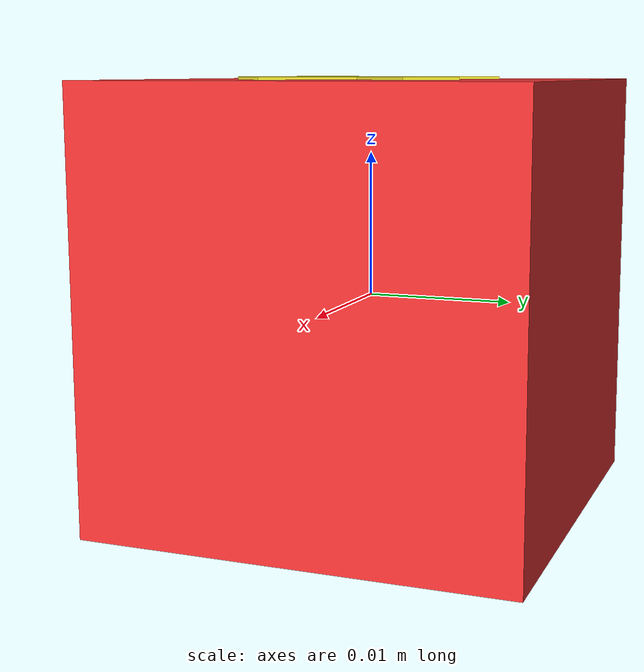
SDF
<?xml version="1.0"?>
<sdf version="1.6">
  <model name="workpiece_defect">
    <link name="link">
      <inertial>
        <mass>0.035</mass>
        <inertia>
          <ixx>5.25e-6</ixx>
          <ixy>0.0</ixy>
          <ixz>0.0</ixz>
          <iyy>5.25e-6</iyy>
          <iyz>0.0</iyz>
          <izz>5.25e-6</izz>
        </inertia>
      </inertial>
      <collision name="collision">
        <geometry>
          <box>
            <size>0.030 0.030 0.030</size>
          </box>
        </geometry>
        <surface>
          <friction>
            <ode>
              <mu>1.5</mu>
              <mu2>1.5</mu2>
              <slip1>0.0</slip1>
              <slip2>0.0</slip2>
            </ode>
            <torsional>
              <coefficient>5.0</coefficient>
              <patch_radius>0.015</patch_radius>
            </torsional>
          </friction>
          <contact>
            <ode>
              <kp>200000.0</kp>
              <kd>200.0</kd>
              <max_vel>0.005</max_vel>
              <min_depth>0.001</min_depth>
            </ode>
          </contact>
          <bounce>
            <restitution_coefficient>0.0</restitution_coefficient>
            <threshold>1000000.0</threshold>
          </bounce>
        </surface>
      </collision>
      <visual name="visual">
        <geometry>
          <box>
            <size>0.030 0.030 0.030</size>
          </box>
        </geometry>
        <material>
          <ambient>0.85 0.15 0.15 1.0</ambient>
          <diffuse>0.95 0.2 0.2 1.0</diffuse>
          <specular>0.4 0.3 0.3 1.0</specular>
        </material>
      </visual>
      <!-- Defect X marker on top surface -->
      <visual name="defect_marker">
        <pose>0 0 0.0151 0 0 0.785</pose>
        <geometry>
          <box>
            <size>0.018 0.004 0.0002</size>
          </box>
        </geometry>
        <material>
          <ambient>0.95 0.9 0.1 1.0</ambient>
          <diffuse>1.0 0.95 0.2 1.0</diffuse>
        </material>
      </visual>
      <visual name="defect_marker_cross">
        <pose>0 0 0.0151 0 0 -0.785</pose>
        <geometry>
          <box>
            <size>0.018 0.004 0.0002</size>
          </box>
        </geometry>
        <material>
          <ambient>0.95 0.9 0.1 1.0</ambient>
          <diffuse>1.0 0.95 0.2 1.0</diffuse>
        </material>
      </visual>
    </link>
  </model>
</sdf>
